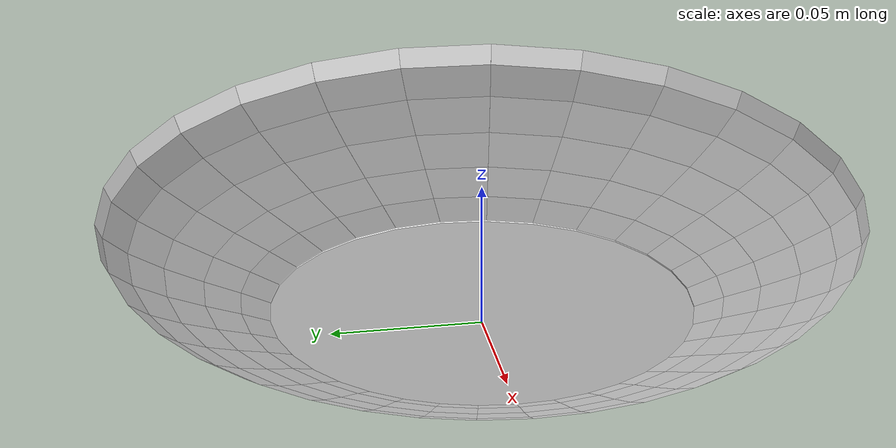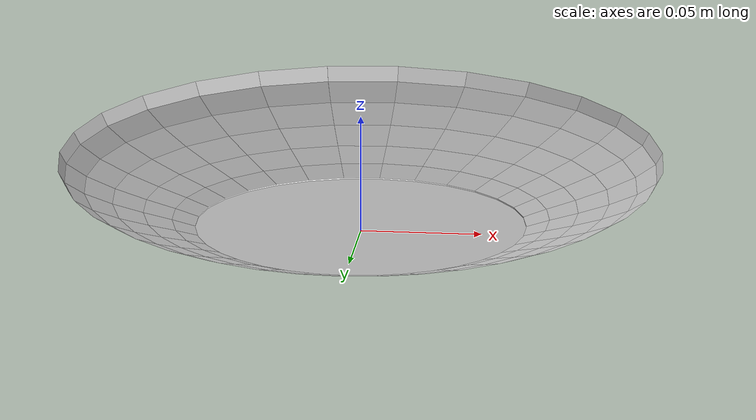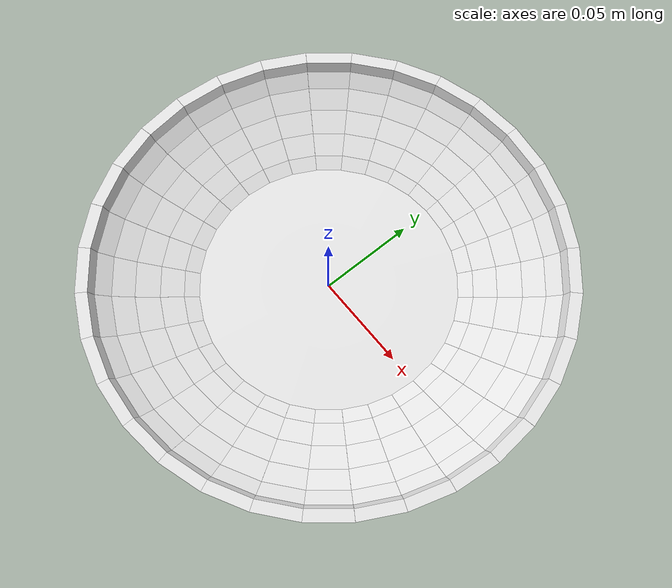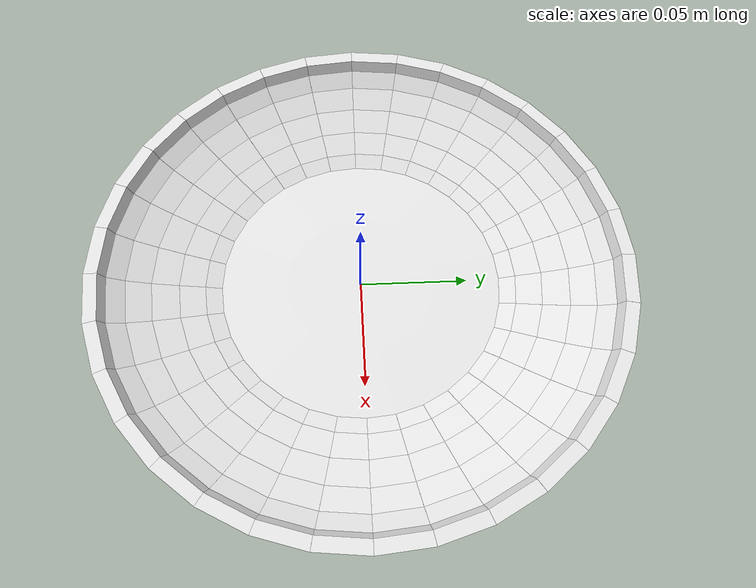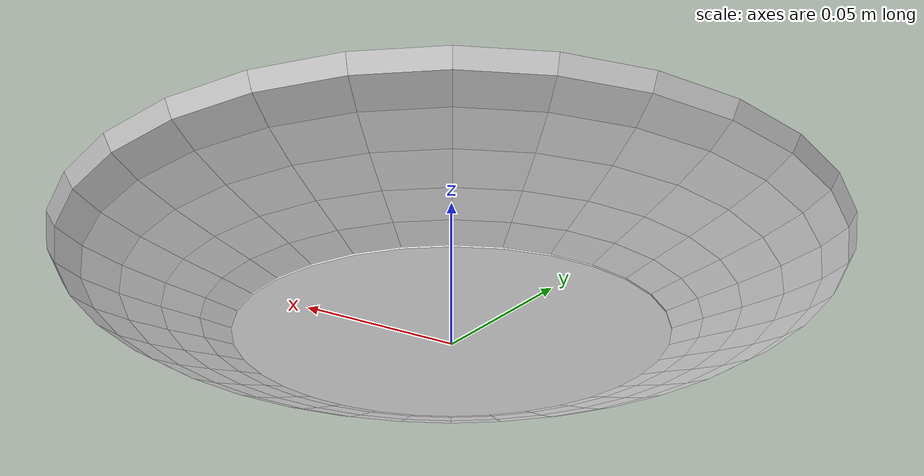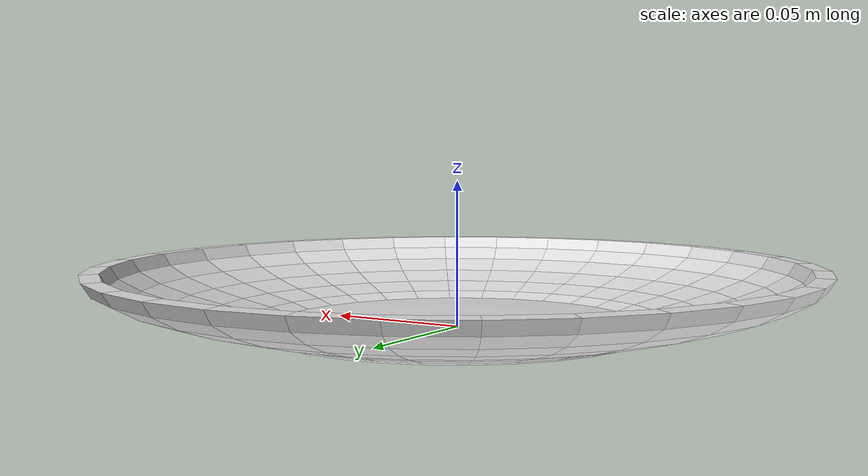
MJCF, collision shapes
<mujoco model="plate">
    <compiler angle="radian" meshdir="./plate/meshes" autolimits="true" />
    <asset>
        <mesh name="Plate" file="obj/Plate.obj" />
        <mesh name="UCX_Plate_0" file="stl/UCX_Plate_001.stl" />
        <mesh name="UCX_Plate_1" file="stl/UCX_Plate_002.stl" />
        <mesh name="UCX_Plate_2" file="stl/UCX_Plate_003.stl" />
        <mesh name="UCX_Plate_3" file="stl/UCX_Plate_004.stl" />
        <mesh name="UCX_Plate_4" file="stl/UCX_Plate_005.stl" />
        <mesh name="UCX_Plate_5" file="stl/UCX_Plate_006.stl" />
        <mesh name="UCX_Plate_6" file="stl/UCX_Plate_007.stl" />
    </asset>

    <default>
        <default class="plate_visual">
            <geom contype="0" conaffinity="0" />
        </default>
        <default class="plate_collision">
            <geom rgba="0.9 0.9 0.9 1.0" group="3"/>
        </default>
    </default>

    <worldbody>
        <body name="plate" pos="0 0 0">
            <freejoint />
            <geom name="Plate" type="mesh" mesh="Plate" class="plate_visual"/>
            <geom name="UCX_Plate_0" type="mesh" mesh="UCX_Plate_0" class="plate_collision"/>
            <geom name="UCX_Plate_1_1" type="mesh" euler="0 0 0" mesh="UCX_Plate_1" class="plate_collision"/>
            <geom name="UCX_Plate_1_2" type="mesh" euler="0 0 0" mesh="UCX_Plate_2" class="plate_collision"/>
            <geom name="UCX_Plate_1_3" type="mesh" euler="0 0 0" mesh="UCX_Plate_3" class="plate_collision"/>
            <geom name="UCX_Plate_1_4" type="mesh" euler="0 0 0" mesh="UCX_Plate_4" class="plate_collision"/>
            <geom name="UCX_Plate_1_5" type="mesh" euler="0 0 0" mesh="UCX_Plate_5" class="plate_collision"/>
            <geom name="UCX_Plate_1_6" type="mesh" euler="0 0 0" mesh="UCX_Plate_6" class="plate_collision"/>
            <geom name="UCX_Plate_2_1" type="mesh" euler="0 0 0.1963" mesh="UCX_Plate_1" class="plate_collision"/>
            <geom name="UCX_Plate_2_2" type="mesh" euler="0 0 0.1963" mesh="UCX_Plate_2" class="plate_collision"/>
            <geom name="UCX_Plate_2_3" type="mesh" euler="0 0 0.1963" mesh="UCX_Plate_3" class="plate_collision"/>
            <geom name="UCX_Plate_2_4" type="mesh" euler="0 0 0.1963" mesh="UCX_Plate_4" class="plate_collision"/>
            <geom name="UCX_Plate_2_5" type="mesh" euler="0 0 0.1963" mesh="UCX_Plate_5" class="plate_collision"/>
            <geom name="UCX_Plate_2_6" type="mesh" euler="0 0 0.1963" mesh="UCX_Plate_6" class="plate_collision"/>
            <geom name="UCX_Plate_3_1" type="mesh" euler="0 0 0.3927" mesh="UCX_Plate_1" class="plate_collision"/>
            <geom name="UCX_Plate_3_2" type="mesh" euler="0 0 0.3927" mesh="UCX_Plate_2" class="plate_collision"/>
            <geom name="UCX_Plate_3_3" type="mesh" euler="0 0 0.3927" mesh="UCX_Plate_3" class="plate_collision"/>
            <geom name="UCX_Plate_3_4" type="mesh" euler="0 0 0.3927" mesh="UCX_Plate_4" class="plate_collision"/>
            <geom name="UCX_Plate_3_5" type="mesh" euler="0 0 0.3927" mesh="UCX_Plate_5" class="plate_collision"/>
            <geom name="UCX_Plate_3_6" type="mesh" euler="0 0 0.3927" mesh="UCX_Plate_6" class="plate_collision"/>
            <geom name="UCX_Plate_4_1" type="mesh" euler="0 0 0.5890" mesh="UCX_Plate_1" class="plate_collision"/>
            <geom name="UCX_Plate_4_2" type="mesh" euler="0 0 0.5890" mesh="UCX_Plate_2" class="plate_collision"/>
            <geom name="UCX_Plate_4_3" type="mesh" euler="0 0 0.5890" mesh="UCX_Plate_3" class="plate_collision"/>
            <geom name="UCX_Plate_4_4" type="mesh" euler="0 0 0.5890" mesh="UCX_Plate_4" class="plate_collision"/>
            <geom name="UCX_Plate_4_5" type="mesh" euler="0 0 0.5890" mesh="UCX_Plate_5" class="plate_collision"/>
            <geom name="UCX_Plate_4_6" type="mesh" euler="0 0 0.5890" mesh="UCX_Plate_6" class="plate_collision"/>
            <geom name="UCX_Plate_5_1" type="mesh" euler="0 0 0.7854" mesh="UCX_Plate_1" class="plate_collision"/>
            <geom name="UCX_Plate_5_2" type="mesh" euler="0 0 0.7854" mesh="UCX_Plate_2" class="plate_collision"/>
            <geom name="UCX_Plate_5_3" type="mesh" euler="0 0 0.7854" mesh="UCX_Plate_3" class="plate_collision"/>
            <geom name="UCX_Plate_5_4" type="mesh" euler="0 0 0.7854" mesh="UCX_Plate_4" class="plate_collision"/>
            <geom name="UCX_Plate_5_5" type="mesh" euler="0 0 0.7854" mesh="UCX_Plate_5" class="plate_collision"/>
            <geom name="UCX_Plate_5_6" type="mesh" euler="0 0 0.7854" mesh="UCX_Plate_6" class="plate_collision"/>
            <geom name="UCX_Plate_6_1" type="mesh" euler="0 0 0.9817" mesh="UCX_Plate_1" class="plate_collision"/>
            <geom name="UCX_Plate_6_2" type="mesh" euler="0 0 0.9817" mesh="UCX_Plate_2" class="plate_collision"/>
            <geom name="UCX_Plate_6_3" type="mesh" euler="0 0 0.9817" mesh="UCX_Plate_3" class="plate_collision"/>
            <geom name="UCX_Plate_6_4" type="mesh" euler="0 0 0.9817" mesh="UCX_Plate_4" class="plate_collision"/>
            <geom name="UCX_Plate_6_5" type="mesh" euler="0 0 0.9817" mesh="UCX_Plate_5" class="plate_collision"/>
            <geom name="UCX_Plate_6_6" type="mesh" euler="0 0 0.9817" mesh="UCX_Plate_6" class="plate_collision"/>
            <geom name="UCX_Plate_7_1" type="mesh" euler="0 0 1.1781" mesh="UCX_Plate_1" class="plate_collision"/>
            <geom name="UCX_Plate_7_2" type="mesh" euler="0 0 1.1781" mesh="UCX_Plate_2" class="plate_collision"/>
            <geom name="UCX_Plate_7_3" type="mesh" euler="0 0 1.1781" mesh="UCX_Plate_3" class="plate_collision"/>
            <geom name="UCX_Plate_7_4" type="mesh" euler="0 0 1.1781" mesh="UCX_Plate_4" class="plate_collision"/>
            <geom name="UCX_Plate_7_5" type="mesh" euler="0 0 1.1781" mesh="UCX_Plate_5" class="plate_collision"/>
            <geom name="UCX_Plate_7_6" type="mesh" euler="0 0 1.1781" mesh="UCX_Plate_6" class="plate_collision"/>
            <geom name="UCX_Plate_8_1" type="mesh" euler="0 0 1.3744" mesh="UCX_Plate_1" class="plate_collision"/>
            <geom name="UCX_Plate_8_2" type="mesh" euler="0 0 1.3744" mesh="UCX_Plate_2" class="plate_collision"/>
            <geom name="UCX_Plate_8_3" type="mesh" euler="0 0 1.3744" mesh="UCX_Plate_3" class="plate_collision"/>
            <geom name="UCX_Plate_8_4" type="mesh" euler="0 0 1.3744" mesh="UCX_Plate_4" class="plate_collision"/>
            <geom name="UCX_Plate_8_5" type="mesh" euler="0 0 1.3744" mesh="UCX_Plate_5" class="plate_collision"/>
            <geom name="UCX_Plate_8_6" type="mesh" euler="0 0 1.3744" mesh="UCX_Plate_6" class="plate_collision"/>
            <geom name="UCX_Plate_9_1" type="mesh" euler="0 0 1.5708" mesh="UCX_Plate_1" class="plate_collision"/>
            <geom name="UCX_Plate_9_2" type="mesh" euler="0 0 1.5708" mesh="UCX_Plate_2" class="plate_collision"/>
            <geom name="UCX_Plate_9_3" type="mesh" euler="0 0 1.5708" mesh="UCX_Plate_3" class="plate_collision"/>
            <geom name="UCX_Plate_9_4" type="mesh" euler="0 0 1.5708" mesh="UCX_Plate_4" class="plate_collision"/>
            <geom name="UCX_Plate_9_5" type="mesh" euler="0 0 1.5708" mesh="UCX_Plate_5" class="plate_collision"/>
            <geom name="UCX_Plate_9_6" type="mesh" euler="0 0 1.5708" mesh="UCX_Plate_6" class="plate_collision"/>
            <geom name="UCX_Plate_10_1" type="mesh" euler="0 0 1.7671" mesh="UCX_Plate_1" class="plate_collision"/>
            <geom name="UCX_Plate_10_2" type="mesh" euler="0 0 1.7671" mesh="UCX_Plate_2" class="plate_collision"/>
            <geom name="UCX_Plate_10_3" type="mesh" euler="0 0 1.7671" mesh="UCX_Plate_3" class="plate_collision"/>
            <geom name="UCX_Plate_10_4" type="mesh" euler="0 0 1.7671" mesh="UCX_Plate_4" class="plate_collision"/>
            <geom name="UCX_Plate_10_5" type="mesh" euler="0 0 1.7671" mesh="UCX_Plate_5" class="plate_collision"/>
            <geom name="UCX_Plate_10_6" type="mesh" euler="0 0 1.7671" mesh="UCX_Plate_6" class="plate_collision"/>
            <geom name="UCX_Plate_11_1" type="mesh" euler="0 0 1.9635" mesh="UCX_Plate_1" class="plate_collision"/>
            <geom name="UCX_Plate_11_2" type="mesh" euler="0 0 1.9635" mesh="UCX_Plate_2" class="plate_collision"/>
            <geom name="UCX_Plate_11_3" type="mesh" euler="0 0 1.9635" mesh="UCX_Plate_3" class="plate_collision"/>
            <geom name="UCX_Plate_11_4" type="mesh" euler="0 0 1.9635" mesh="UCX_Plate_4" class="plate_collision"/>
            <geom name="UCX_Plate_11_5" type="mesh" euler="0 0 1.9635" mesh="UCX_Plate_5" class="plate_collision"/>
            <geom name="UCX_Plate_11_6" type="mesh" euler="0 0 1.9635" mesh="UCX_Plate_6" class="plate_collision"/>
            <geom name="UCX_Plate_12_1" type="mesh" euler="0 0 2.1598" mesh="UCX_Plate_1" class="plate_collision"/>
            <geom name="UCX_Plate_12_2" type="mesh" euler="0 0 2.1598" mesh="UCX_Plate_2" class="plate_collision"/>
            <geom name="UCX_Plate_12_3" type="mesh" euler="0 0 2.1598" mesh="UCX_Plate_3" class="plate_collision"/>
            <geom name="UCX_Plate_12_4" type="mesh" euler="0 0 2.1598" mesh="UCX_Plate_4" class="plate_collision"/>
            <geom name="UCX_Plate_12_5" type="mesh" euler="0 0 2.1598" mesh="UCX_Plate_5" class="plate_collision"/>
            <geom name="UCX_Plate_12_6" type="mesh" euler="0 0 2.1598" mesh="UCX_Plate_6" class="plate_collision"/>
            <geom name="UCX_Plate_13_1" type="mesh" euler="0 0 2.3562" mesh="UCX_Plate_1" class="plate_collision"/>
            <geom name="UCX_Plate_13_2" type="mesh" euler="0 0 2.3562" mesh="UCX_Plate_2" class="plate_collision"/>
            <geom name="UCX_Plate_13_3" type="mesh" euler="0 0 2.3562" mesh="UCX_Plate_3" class="plate_collision"/>
            <geom name="UCX_Plate_13_4" type="mesh" euler="0 0 2.3562" mesh="UCX_Plate_4" class="plate_collision"/>
            <geom name="UCX_Plate_13_5" type="mesh" euler="0 0 2.3562" mesh="UCX_Plate_5" class="plate_collision"/>
            <geom name="UCX_Plate_13_6" type="mesh" euler="0 0 2.3562" mesh="UCX_Plate_6" class="plate_collision"/>
            <geom name="UCX_Plate_14_1" type="mesh" euler="0 0 2.5525" mesh="UCX_Plate_1" class="plate_collision"/>
            <geom name="UCX_Plate_14_2" type="mesh" euler="0 0 2.5525" mesh="UCX_Plate_2" class="plate_collision"/>
            <geom name="UCX_Plate_14_3" type="mesh" euler="0 0 2.5525" mesh="UCX_Plate_3" class="plate_collision"/>
            <geom name="UCX_Plate_14_4" type="mesh" euler="0 0 2.5525" mesh="UCX_Plate_4" class="plate_collision"/>
            <geom name="UCX_Plate_14_5" type="mesh" euler="0 0 2.5525" mesh="UCX_Plate_5" class="plate_collision"/>
            <geom name="UCX_Plate_14_6" type="mesh" euler="0 0 2.5525" mesh="UCX_Plate_6" class="plate_collision"/>
            <geom name="UCX_Plate_15_1" type="mesh" euler="0 0 2.7489" mesh="UCX_Plate_1" class="plate_collision"/>
            <geom name="UCX_Plate_15_2" type="mesh" euler="0 0 2.7489" mesh="UCX_Plate_2" class="plate_collision"/>
            <geom name="UCX_Plate_15_3" type="mesh" euler="0 0 2.7489" mesh="UCX_Plate_3" class="plate_collision"/>
            <geom name="UCX_Plate_15_4" type="mesh" euler="0 0 2.7489" mesh="UCX_Plate_4" class="plate_collision"/>
            <geom name="UCX_Plate_15_5" type="mesh" euler="0 0 2.7489" mesh="UCX_Plate_5" class="plate_collision"/>
            <geom name="UCX_Plate_15_6" type="mesh" euler="0 0 2.7489" mesh="UCX_Plate_6" class="plate_collision"/>
            <geom name="UCX_Plate_16_1" type="mesh" euler="0 0 2.9452" mesh="UCX_Plate_1" class="plate_collision"/>
            <geom name="UCX_Plate_16_2" type="mesh" euler="0 0 2.9452" mesh="UCX_Plate_2" class="plate_collision"/>
            <geom name="UCX_Plate_16_3" type="mesh" euler="0 0 2.9452" mesh="UCX_Plate_3" class="plate_collision"/>
            <geom name="UCX_Plate_16_4" type="mesh" euler="0 0 2.9452" mesh="UCX_Plate_4" class="plate_collision"/>
            <geom name="UCX_Plate_16_5" type="mesh" euler="0 0 2.9452" mesh="UCX_Plate_5" class="plate_collision"/>
            <geom name="UCX_Plate_16_6" type="mesh" euler="0 0 2.9452" mesh="UCX_Plate_6" class="plate_collision"/>
            <geom name="UCX_Plate_17_1" type="mesh" euler="0 0 3.1416" mesh="UCX_Plate_1" class="plate_collision"/>
            <geom name="UCX_Plate_17_2" type="mesh" euler="0 0 3.1416" mesh="UCX_Plate_2" class="plate_collision"/>
            <geom name="UCX_Plate_17_3" type="mesh" euler="0 0 3.1416" mesh="UCX_Plate_3" class="plate_collision"/>
            <geom name="UCX_Plate_17_4" type="mesh" euler="0 0 3.1416" mesh="UCX_Plate_4" class="plate_collision"/>
            <geom name="UCX_Plate_17_5" type="mesh" euler="0 0 3.1416" mesh="UCX_Plate_5" class="plate_collision"/>
            <geom name="UCX_Plate_17_6" type="mesh" euler="0 0 3.1416" mesh="UCX_Plate_6" class="plate_collision"/>
            <geom name="UCX_Plate_18_1" type="mesh" euler="0 0 3.3379" mesh="UCX_Plate_1" class="plate_collision"/>
            <geom name="UCX_Plate_18_2" type="mesh" euler="0 0 3.3379" mesh="UCX_Plate_2" class="plate_collision"/>
            <geom name="UCX_Plate_18_3" type="mesh" euler="0 0 3.3379" mesh="UCX_Plate_3" class="plate_collision"/>
            <geom name="UCX_Plate_18_4" type="mesh" euler="0 0 3.3379" mesh="UCX_Plate_4" class="plate_collision"/>
            <geom name="UCX_Plate_18_5" type="mesh" euler="0 0 3.3379" mesh="UCX_Plate_5" class="plate_collision"/>
            <geom name="UCX_Plate_18_6" type="mesh" euler="0 0 3.3379" mesh="UCX_Plate_6" class="plate_collision"/>
            <geom name="UCX_Plate_19_1" type="mesh" euler="0 0 3.5343" mesh="UCX_Plate_1" class="plate_collision"/>
            <geom name="UCX_Plate_19_2" type="mesh" euler="0 0 3.5343" mesh="UCX_Plate_2" class="plate_collision"/>
            <geom name="UCX_Plate_19_3" type="mesh" euler="0 0 3.5343" mesh="UCX_Plate_3" class="plate_collision"/>
            <geom name="UCX_Plate_19_4" type="mesh" euler="0 0 3.5343" mesh="UCX_Plate_4" class="plate_collision"/>
            <geom name="UCX_Plate_19_5" type="mesh" euler="0 0 3.5343" mesh="UCX_Plate_5" class="plate_collision"/>
            <geom name="UCX_Plate_19_6" type="mesh" euler="0 0 3.5343" mesh="UCX_Plate_6" class="plate_collision"/>
            <geom name="UCX_Plate_20_1" type="mesh" euler="0 0 3.7306" mesh="UCX_Plate_1" class="plate_collision"/>
            <geom name="UCX_Plate_20_2" type="mesh" euler="0 0 3.7306" mesh="UCX_Plate_2" class="plate_collision"/>
            <geom name="UCX_Plate_20_3" type="mesh" euler="0 0 3.7306" mesh="UCX_Plate_3" class="plate_collision"/>
            <geom name="UCX_Plate_20_4" type="mesh" euler="0 0 3.7306" mesh="UCX_Plate_4" class="plate_collision"/>
            <geom name="UCX_Plate_20_5" type="mesh" euler="0 0 3.7306" mesh="UCX_Plate_5" class="plate_collision"/>
            <geom name="UCX_Plate_20_6" type="mesh" euler="0 0 3.7306" mesh="UCX_Plate_6" class="plate_collision"/>
            <geom name="UCX_Plate_21_1" type="mesh" euler="0 0 3.9270" mesh="UCX_Plate_1" class="plate_collision"/>
            <geom name="UCX_Plate_21_2" type="mesh" euler="0 0 3.9270" mesh="UCX_Plate_2" class="plate_collision"/>
            <geom name="UCX_Plate_21_3" type="mesh" euler="0 0 3.9270" mesh="UCX_Plate_3" class="plate_collision"/>
            <geom name="UCX_Plate_21_4" type="mesh" euler="0 0 3.9270" mesh="UCX_Plate_4" class="plate_collision"/>
            <geom name="UCX_Plate_21_5" type="mesh" euler="0 0 3.9270" mesh="UCX_Plate_5" class="plate_collision"/>
            <geom name="UCX_Plate_21_6" type="mesh" euler="0 0 3.9270" mesh="UCX_Plate_6" class="plate_collision"/>
            <geom name="UCX_Plate_22_1" type="mesh" euler="0 0 4.1233" mesh="UCX_Plate_1" class="plate_collision"/>
            <geom name="UCX_Plate_22_2" type="mesh" euler="0 0 4.1233" mesh="UCX_Plate_2" class="plate_collision"/>
            <geom name="UCX_Plate_22_3" type="mesh" euler="0 0 4.1233" mesh="UCX_Plate_3" class="plate_collision"/>
            <geom name="UCX_Plate_22_4" type="mesh" euler="0 0 4.1233" mesh="UCX_Plate_4" class="plate_collision"/>
            <geom name="UCX_Plate_22_5" type="mesh" euler="0 0 4.1233" mesh="UCX_Plate_5" class="plate_collision"/>
            <geom name="UCX_Plate_22_6" type="mesh" euler="0 0 4.1233" mesh="UCX_Plate_6" class="plate_collision"/>
            <geom name="UCX_Plate_23_1" type="mesh" euler="0 0 4.3197" mesh="UCX_Plate_1" class="plate_collision"/>
            <geom name="UCX_Plate_23_2" type="mesh" euler="0 0 4.3197" mesh="UCX_Plate_2" class="plate_collision"/>
            <geom name="UCX_Plate_23_3" type="mesh" euler="0 0 4.3197" mesh="UCX_Plate_3" class="plate_collision"/>
            <geom name="UCX_Plate_23_4" type="mesh" euler="0 0 4.3197" mesh="UCX_Plate_4" class="plate_collision"/>
            <geom name="UCX_Plate_23_5" type="mesh" euler="0 0 4.3197" mesh="UCX_Plate_5" class="plate_collision"/>
            <geom name="UCX_Plate_23_6" type="mesh" euler="0 0 4.3197" mesh="UCX_Plate_6" class="plate_collision"/>
            <geom name="UCX_Plate_24_1" type="mesh" euler="0 0 4.5160" mesh="UCX_Plate_1" class="plate_collision"/>
            <geom name="UCX_Plate_24_2" type="mesh" euler="0 0 4.5160" mesh="UCX_Plate_2" class="plate_collision"/>
            <geom name="UCX_Plate_24_3" type="mesh" euler="0 0 4.5160" mesh="UCX_Plate_3" class="plate_collision"/>
            <geom name="UCX_Plate_24_4" type="mesh" euler="0 0 4.5160" mesh="UCX_Plate_4" class="plate_collision"/>
            <geom name="UCX_Plate_24_5" type="mesh" euler="0 0 4.5160" mesh="UCX_Plate_5" class="plate_collision"/>
            <geom name="UCX_Plate_24_6" type="mesh" euler="0 0 4.5160" mesh="UCX_Plate_6" class="plate_collision"/>
            <geom name="UCX_Plate_25_1" type="mesh" euler="0 0 4.7124" mesh="UCX_Plate_1" class="plate_collision"/>
            <geom name="UCX_Plate_25_2" type="mesh" euler="0 0 4.7124" mesh="UCX_Plate_2" class="plate_collision"/>
            <geom name="UCX_Plate_25_3" type="mesh" euler="0 0 4.7124" mesh="UCX_Plate_3" class="plate_collision"/>
            <geom name="UCX_Plate_25_4" type="mesh" euler="0 0 4.7124" mesh="UCX_Plate_4" class="plate_collision"/>
            <geom name="UCX_Plate_25_5" type="mesh" euler="0 0 4.7124" mesh="UCX_Plate_5" class="plate_collision"/>
            <geom name="UCX_Plate_25_6" type="mesh" euler="0 0 4.7124" mesh="UCX_Plate_6" class="plate_collision"/>
            <geom name="UCX_Plate_26_1" type="mesh" euler="0 0 4.9087" mesh="UCX_Plate_1" class="plate_collision"/>
            <geom name="UCX_Plate_26_2" type="mesh" euler="0 0 4.9087" mesh="UCX_Plate_2" class="plate_collision"/>
            <geom name="UCX_Plate_26_3" type="mesh" euler="0 0 4.9087" mesh="UCX_Plate_3" class="plate_collision"/>
            <geom name="UCX_Plate_26_4" type="mesh" euler="0 0 4.9087" mesh="UCX_Plate_4" class="plate_collision"/>
            <geom name="UCX_Plate_26_5" type="mesh" euler="0 0 4.9087" mesh="UCX_Plate_5" class="plate_collision"/>
            <geom name="UCX_Plate_26_6" type="mesh" euler="0 0 4.9087" mesh="UCX_Plate_6" class="plate_collision"/>
            <geom name="UCX_Plate_27_1" type="mesh" euler="0 0 5.1051" mesh="UCX_Plate_1" class="plate_collision"/>
            <geom name="UCX_Plate_27_2" type="mesh" euler="0 0 5.1051" mesh="UCX_Plate_2" class="plate_collision"/>
            <geom name="UCX_Plate_27_3" type="mesh" euler="0 0 5.1051" mesh="UCX_Plate_3" class="plate_collision"/>
            <geom name="UCX_Plate_27_4" type="mesh" euler="0 0 5.1051" mesh="UCX_Plate_4" class="plate_collision"/>
            <geom name="UCX_Plate_27_5" type="mesh" euler="0 0 5.1051" mesh="UCX_Plate_5" class="plate_collision"/>
            <geom name="UCX_Plate_27_6" type="mesh" euler="0 0 5.1051" mesh="UCX_Plate_6" class="plate_collision"/>
            <geom name="UCX_Plate_28_1" type="mesh" euler="0 0 5.3014" mesh="UCX_Plate_1" class="plate_collision"/>
            <geom name="UCX_Plate_28_2" type="mesh" euler="0 0 5.3014" mesh="UCX_Plate_2" class="plate_collision"/>
            <geom name="UCX_Plate_28_3" type="mesh" euler="0 0 5.3014" mesh="UCX_Plate_3" class="plate_collision"/>
            <geom name="UCX_Plate_28_4" type="mesh" euler="0 0 5.3014" mesh="UCX_Plate_4" class="plate_collision"/>
            <geom name="UCX_Plate_28_5" type="mesh" euler="0 0 5.3014" mesh="UCX_Plate_5" class="plate_collision"/>
            <geom name="UCX_Plate_28_6" type="mesh" euler="0 0 5.3014" mesh="UCX_Plate_6" class="plate_collision"/>
            <geom name="UCX_Plate_29_1" type="mesh" euler="0 0 5.4978" mesh="UCX_Plate_1" class="plate_collision"/>
            <geom name="UCX_Plate_29_2" type="mesh" euler="0 0 5.4978" mesh="UCX_Plate_2" class="plate_collision"/>
            <geom name="UCX_Plate_29_3" type="mesh" euler="0 0 5.4978" mesh="UCX_Plate_3" class="plate_collision"/>
            <geom name="UCX_Plate_29_4" type="mesh" euler="0 0 5.4978" mesh="UCX_Plate_4" class="plate_collision"/>
            <geom name="UCX_Plate_29_5" type="mesh" euler="0 0 5.4978" mesh="UCX_Plate_5" class="plate_collision"/>
            <geom name="UCX_Plate_29_6" type="mesh" euler="0 0 5.4978" mesh="UCX_Plate_6" class="plate_collision"/>
            <geom name="UCX_Plate_30_1" type="mesh" euler="0 0 5.6941" mesh="UCX_Plate_1" class="plate_collision"/>
            <geom name="UCX_Plate_30_2" type="mesh" euler="0 0 5.6941" mesh="UCX_Plate_2" class="plate_collision"/>
            <geom name="UCX_Plate_30_3" type="mesh" euler="0 0 5.6941" mesh="UCX_Plate_3" class="plate_collision"/>
            <geom name="UCX_Plate_30_4" type="mesh" euler="0 0 5.6941" mesh="UCX_Plate_4" class="plate_collision"/>
            <geom name="UCX_Plate_30_5" type="mesh" euler="0 0 5.6941" mesh="UCX_Plate_5" class="plate_collision"/>
            <geom name="UCX_Plate_30_6" type="mesh" euler="0 0 5.6941" mesh="UCX_Plate_6" class="plate_collision"/>
            <geom name="UCX_Plate_31_1" type="mesh" euler="0 0 5.8905" mesh="UCX_Plate_1" class="plate_collision"/>
            <geom name="UCX_Plate_31_2" type="mesh" euler="0 0 5.8905" mesh="UCX_Plate_2" class="plate_collision"/>
            <geom name="UCX_Plate_31_3" type="mesh" euler="0 0 5.8905" mesh="UCX_Plate_3" class="plate_collision"/>
            <geom name="UCX_Plate_31_4" type="mesh" euler="0 0 5.8905" mesh="UCX_Plate_4" class="plate_collision"/>
            <geom name="UCX_Plate_31_5" type="mesh" euler="0 0 5.8905" mesh="UCX_Plate_5" class="plate_collision"/>
            <geom name="UCX_Plate_31_6" type="mesh" euler="0 0 5.8905" mesh="UCX_Plate_6" class="plate_collision"/>
            <geom name="UCX_Plate_32_1" type="mesh" euler="0 0 6.0868" mesh="UCX_Plate_1" class="plate_collision"/>
            <geom name="UCX_Plate_32_2" type="mesh" euler="0 0 6.0868" mesh="UCX_Plate_2" class="plate_collision"/>
            <geom name="UCX_Plate_32_3" type="mesh" euler="0 0 6.0868" mesh="UCX_Plate_3" class="plate_collision"/>
            <geom name="UCX_Plate_32_4" type="mesh" euler="0 0 6.0868" mesh="UCX_Plate_4" class="plate_collision"/>
            <geom name="UCX_Plate_32_5" type="mesh" euler="0 0 6.0868" mesh="UCX_Plate_5" class="plate_collision"/>
            <geom name="UCX_Plate_32_6" type="mesh" euler="0 0 6.0868" mesh="UCX_Plate_6" class="plate_collision"/>
        </body>
    </worldbody>
</mujoco>
